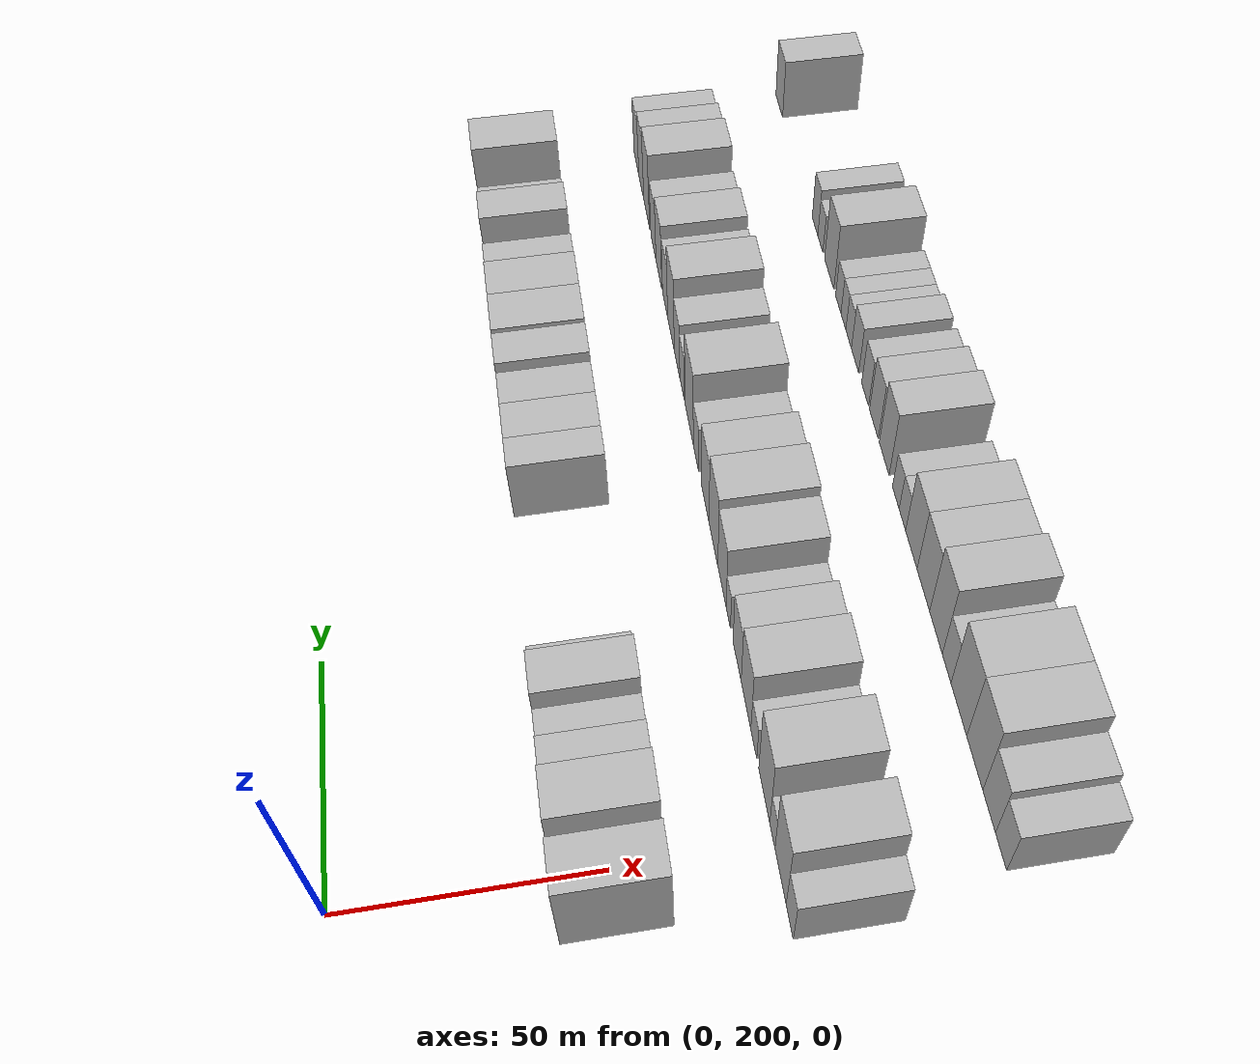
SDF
<sdf version="1.6">
 <world name="default">
  <model name="building_64">
   <static>1</static>
   <pose>50.0000 193.2630 0 0.000000 0.000000 0.000000</pose>
   <link name="link">
    <pose>0 0 12.00 0 0 0</pose>
    <collision name="collision"><geometry><box><size>20.0000 9.8753 24.0000</size></box></geometry></collision>
    <visual name="visual">
     <cast_shadows>0</cast_shadows>
     <geometry><box><size>20.0000 9.8753 24.0000</size></box></geometry>
     <material>
      <script>
       <uri>model://HANNAS_wall/materials/scripts</uri>
       <uri>model://HANNAS_wall/materials/textures</uri>
       <name>vrc/HANNAS_wall</name>
      </script>
     </material>
    </visual>
   </link>
  </model>
  <model name="building_65">
   <static>1</static>
   <pose>50.0000 206.0826 0 0.000000 0.000000 0.000000</pose>
   <link name="link">
    <pose>0 0 12.00 0 0 0</pose>
    <collision name="collision"><geometry><box><size>20.0000 9.7639 24.0000</size></box></geometry></collision>
    <visual name="visual">
     <cast_shadows>0</cast_shadows>
     <geometry><box><size>20.0000 9.7639 24.0000</size></box></geometry>
     <material>
      <script>
       <uri>model://HANNAS_wall/materials/scripts</uri>
       <uri>model://HANNAS_wall/materials/textures</uri>
       <name>vrc/HANNAS_wall</name>
      </script>
     </material>
    </visual>
   </link>
  </model>
  <model name="building_66">
   <static>1</static>
   <pose>50.0000 215.0716 0 0.000000 0.000000 0.000000</pose>
   <link name="link">
    <pose>0 0 9.00 0 0 0</pose>
    <collision name="collision"><geometry><box><size>20.0000 8.2140 18.0000</size></box></geometry></collision>
    <visual name="visual">
     <cast_shadows>0</cast_shadows>
     <geometry><box><size>20.0000 8.2140 18.0000</size></box></geometry>
     <material>
      <script>
       <uri>model://HANNAS_wall/materials/scripts</uri>
       <uri>model://HANNAS_wall/materials/textures</uri>
       <name>vrc/HANNAS_wall</name>
      </script>
     </material>
    </visual>
   </link>
  </model>
  <model name="building_67">
   <static>1</static>
   <pose>50.0000 222.5270 0 0.000000 0.000000 0.000000</pose>
   <link name="link">
    <pose>0 0 7.50 0 0 0</pose>
    <collision name="collision"><geometry><box><size>20.0000 6.6967 15.0000</size></box></geometry></collision>
    <visual name="visual">
     <cast_shadows>0</cast_shadows>
     <geometry><box><size>20.0000 6.6967 15.0000</size></box></geometry>
     <material>
      <script>
       <uri>model://HANNAS_wall/materials/scripts</uri>
       <uri>model://HANNAS_wall/materials/textures</uri>
       <name>vrc/HANNAS_wall</name>
      </script>
     </material>
    </visual>
   </link>
  </model>
  <model name="building_68">
   <static>1</static>
   <pose>50.0000 230.2782 0 0.000000 0.000000 0.000000</pose>
   <link name="link">
    <pose>0 0 10.50 0 0 0</pose>
    <collision name="collision"><geometry><box><size>20.0000 8.8058 21.0000</size></box></geometry></collision>
    <visual name="visual">
     <cast_shadows>0</cast_shadows>
     <geometry><box><size>20.0000 8.8058 21.0000</size></box></geometry>
     <material>
      <script>
       <uri>model://HANNAS_wall/materials/scripts</uri>
       <uri>model://HANNAS_wall/materials/textures</uri>
       <name>vrc/HANNAS_wall</name>
      </script>
     </material>
    </visual>
   </link>
  </model>
  <model name="building_69">
   <static>1</static>
   <pose>50.0000 237.5186 0 0.000000 0.000000 0.000000</pose>
   <link name="link">
    <pose>0 0 6.00 0 0 0</pose>
    <collision name="collision"><geometry><box><size>20.0000 5.6751 12.0000</size></box></geometry></collision>
    <visual name="visual">
     <cast_shadows>0</cast_shadows>
     <geometry><box><size>20.0000 5.6751 12.0000</size></box></geometry>
     <material>
      <script>
       <uri>model://HANNAS_wall/materials/scripts</uri>
       <uri>model://HANNAS_wall/materials/textures</uri>
       <name>vrc/HANNAS_wall</name>
      </script>
     </material>
    </visual>
   </link>
  </model>
  <model name="building_70">
   <static>1</static>
   <pose>50.0000 281.3807 0 0.000000 0.000000 0.000000</pose>
   <link name="link">
    <pose>0 0 9.00 0 0 0</pose>
    <collision name="collision"><geometry><box><size>20.0000 7.3497 18.0000</size></box></geometry></collision>
    <visual name="visual">
     <cast_shadows>0</cast_shadows>
     <geometry><box><size>20.0000 7.3497 18.0000</size></box></geometry>
     <material>
      <script>
       <uri>model://HANNAS_wall/materials/scripts</uri>
       <uri>model://HANNAS_wall/materials/textures</uri>
       <name>vrc/HANNAS_wall</name>
      </script>
     </material>
    </visual>
   </link>
  </model>
  <model name="building_71">
   <static>1</static>
   <pose>50.0000 289.5243 0 0.000000 0.000000 0.000000</pose>
   <link name="link">
    <pose>0 0 9.00 0 0 0</pose>
    <collision name="collision"><geometry><box><size>20.0000 8.9375 18.0000</size></box></geometry></collision>
    <visual name="visual">
     <cast_shadows>0</cast_shadows>
     <geometry><box><size>20.0000 8.9375 18.0000</size></box></geometry>
     <material>
      <script>
       <uri>model://HANNAS_wall/materials/scripts</uri>
       <uri>model://HANNAS_wall/materials/textures</uri>
       <name>vrc/HANNAS_wall</name>
      </script>
     </material>
    </visual>
   </link>
  </model>
  <model name="building_72">
   <static>1</static>
   <pose>50.0000 298.1298 0 0.000000 0.000000 0.000000</pose>
   <link name="link">
    <pose>0 0 9.00 0 0 0</pose>
    <collision name="collision"><geometry><box><size>20.0000 8.2735 18.0000</size></box></geometry></collision>
    <visual name="visual">
     <cast_shadows>0</cast_shadows>
     <geometry><box><size>20.0000 8.2735 18.0000</size></box></geometry>
     <material>
      <script>
       <uri>model://HANNAS_wall/materials/scripts</uri>
       <uri>model://HANNAS_wall/materials/textures</uri>
       <name>vrc/HANNAS_wall</name>
      </script>
     </material>
    </visual>
   </link>
  </model>
  <model name="building_73">
   <static>1</static>
   <pose>50.0000 306.4680 0 0.000000 0.000000 0.000000</pose>
   <link name="link">
    <pose>0 0 10.50 0 0 0</pose>
    <collision name="collision"><geometry><box><size>20.0000 8.4028 21.0000</size></box></geometry></collision>
    <visual name="visual">
     <cast_shadows>0</cast_shadows>
     <geometry><box><size>20.0000 8.4028 21.0000</size></box></geometry>
     <material>
      <script>
       <uri>model://HANNAS_wall/materials/scripts</uri>
       <uri>model://HANNAS_wall/materials/textures</uri>
       <name>vrc/HANNAS_wall</name>
      </script>
     </material>
    </visual>
   </link>
  </model>
  <model name="building_74">
   <static>1</static>
   <pose>50.0000 316.7912 0 0.000000 0.000000 0.000000</pose>
   <link name="link">
    <pose>0 0 10.50 0 0 0</pose>
    <collision name="collision"><geometry><box><size>20.0000 10.2438 21.0000</size></box></geometry></collision>
    <visual name="visual">
     <cast_shadows>0</cast_shadows>
     <geometry><box><size>20.0000 10.2438 21.0000</size></box></geometry>
     <material>
      <script>
       <uri>model://HANNAS_wall/materials/scripts</uri>
       <uri>model://HANNAS_wall/materials/textures</uri>
       <name>vrc/HANNAS_wall</name>
      </script>
     </material>
    </visual>
   </link>
  </model>
  <model name="building_75">
   <static>1</static>
   <pose>50.0000 326.7842 0 0.000000 0.000000 0.000000</pose>
   <link name="link">
    <pose>0 0 10.50 0 0 0</pose>
    <collision name="collision"><geometry><box><size>20.0000 9.7421 21.0000</size></box></geometry></collision>
    <visual name="visual">
     <cast_shadows>0</cast_shadows>
     <geometry><box><size>20.0000 9.7421 21.0000</size></box></geometry>
     <material>
      <script>
       <uri>model://HANNAS_wall/materials/scripts</uri>
       <uri>model://HANNAS_wall/materials/textures</uri>
       <name>vrc/HANNAS_wall</name>
      </script>
     </material>
    </visual>
   </link>
  </model>
  <model name="building_76">
   <static>1</static>
   <pose>50.0000 335.8999 0 0.000000 0.000000 0.000000</pose>
   <link name="link">
    <pose>0 0 9.00 0 0 0</pose>
    <collision name="collision"><geometry><box><size>20.0000 8.4894 18.0000</size></box></geometry></collision>
    <visual name="visual">
     <cast_shadows>0</cast_shadows>
     <geometry><box><size>20.0000 8.4894 18.0000</size></box></geometry>
     <material>
      <script>
       <uri>model://HANNAS_wall/materials/scripts</uri>
       <uri>model://HANNAS_wall/materials/textures</uri>
       <name>vrc/HANNAS_wall</name>
      </script>
     </material>
    </visual>
   </link>
  </model>
  <model name="building_77">
   <static>1</static>
   <pose>50.0000 342.6423 0 0.000000 0.000000 0.000000</pose>
   <link name="link">
    <pose>0 0 6.00 0 0 0</pose>
    <collision name="collision"><geometry><box><size>20.0000 4.9955 12.0000</size></box></geometry></collision>
    <visual name="visual">
     <cast_shadows>0</cast_shadows>
     <geometry><box><size>20.0000 4.9955 12.0000</size></box></geometry>
     <material>
      <script>
       <uri>model://HANNAS_wall/materials/scripts</uri>
       <uri>model://HANNAS_wall/materials/textures</uri>
       <name>vrc/HANNAS_wall</name>
      </script>
     </material>
    </visual>
   </link>
  </model>
  <model name="building_78">
   <static>1</static>
   <pose>50.0000 349.5223 0 0.000000 0.000000 0.000000</pose>
   <link name="link">
    <pose>0 0 10.50 0 0 0</pose>
    <collision name="collision"><geometry><box><size>20.0000 8.7647 21.0000</size></box></geometry></collision>
    <visual name="visual">
     <cast_shadows>0</cast_shadows>
     <geometry><box><size>20.0000 8.7647 21.0000</size></box></geometry>
     <material>
      <script>
       <uri>model://HANNAS_wall/materials/scripts</uri>
       <uri>model://HANNAS_wall/materials/textures</uri>
       <name>vrc/HANNAS_wall</name>
      </script>
     </material>
    </visual>
   </link>
  </model>
  <model name="building_79">
   <static>1</static>
   <pose>50.0000 356.8424 0 0.000000 0.000000 0.000000</pose>
   <link name="link">
    <pose>0 0 6.00 0 0 0</pose>
    <collision name="collision"><geometry><box><size>20.0000 5.8755 12.0000</size></box></geometry></collision>
    <visual name="visual">
     <cast_shadows>0</cast_shadows>
     <geometry><box><size>20.0000 5.8755 12.0000</size></box></geometry>
     <material>
      <script>
       <uri>model://HANNAS_wall/materials/scripts</uri>
       <uri>model://HANNAS_wall/materials/textures</uri>
       <name>vrc/HANNAS_wall</name>
      </script>
     </material>
    </visual>
   </link>
  </model>
  <model name="building_80">
   <static>1</static>
   <pose>50.0000 362.2302 0 0.000000 0.000000 0.000000</pose>
   <link name="link">
    <pose>0 0 6.00 0 0 0</pose>
    <collision name="collision"><geometry><box><size>20.0000 4.9001 12.0000</size></box></geometry></collision>
    <visual name="visual">
     <cast_shadows>0</cast_shadows>
     <geometry><box><size>20.0000 4.9001 12.0000</size></box></geometry>
     <material>
      <script>
       <uri>model://HANNAS_wall/materials/scripts</uri>
       <uri>model://HANNAS_wall/materials/textures</uri>
       <name>vrc/HANNAS_wall</name>
      </script>
     </material>
    </visual>
   </link>
  </model>
  <model name="building_81">
   <static>1</static>
   <pose>50.0000 370.0656 0 0.000000 0.000000 0.000000</pose>
   <link name="link">
    <pose>0 0 12.00 0 0 0</pose>
    <collision name="collision"><geometry><box><size>20.0000 10.7706 24.0000</size></box></geometry></collision>
    <visual name="visual">
     <cast_shadows>0</cast_shadows>
     <geometry><box><size>20.0000 10.7706 24.0000</size></box></geometry>
     <material>
      <script>
       <uri>model://HANNAS_wall/materials/scripts</uri>
       <uri>model://HANNAS_wall/materials/textures</uri>
       <name>vrc/HANNAS_wall</name>
      </script>
     </material>
    </visual>
   </link>
  </model>
  <model name="building_82">
   <static>1</static>
   <pose>50.0000 378.5061 0 0.000000 0.000000 0.000000</pose>
   <link name="link">
    <pose>0 0 7.50 0 0 0</pose>
    <collision name="collision"><geometry><box><size>20.0000 6.1104 15.0000</size></box></geometry></collision>
    <visual name="visual">
     <cast_shadows>0</cast_shadows>
     <geometry><box><size>20.0000 6.1104 15.0000</size></box></geometry>
     <material>
      <script>
       <uri>model://HANNAS_wall/materials/scripts</uri>
       <uri>model://HANNAS_wall/materials/textures</uri>
       <name>vrc/HANNAS_wall</name>
      </script>
     </material>
    </visual>
   </link>
  </model>
  <model name="building_141">
   <static>1</static>
   <pose>90.0000 185.7014 0 0.000000 0.000000 0.000000</pose>
   <link name="link">
    <pose>0 0 7.50 0 0 0</pose>
    <collision name="collision"><geometry><box><size>20.0000 6.1171 15.0000</size></box></geometry></collision>
    <visual name="visual">
     <cast_shadows>0</cast_shadows>
     <geometry><box><size>20.0000 6.1171 15.0000</size></box></geometry>
     <material>
      <script>
       <uri>model://HANNAS_wall/materials/scripts</uri>
       <uri>model://HANNAS_wall/materials/textures</uri>
       <name>vrc/HANNAS_wall</name>
      </script>
     </material>
    </visual>
   </link>
  </model>
  <model name="building_142">
   <static>1</static>
   <pose>90.0000 193.8503 0 0.000000 0.000000 0.000000</pose>
   <link name="link">
    <pose>0 0 12.00 0 0 0</pose>
    <collision name="collision"><geometry><box><size>20.0000 10.1807 24.0000</size></box></geometry></collision>
    <visual name="visual">
     <cast_shadows>0</cast_shadows>
     <geometry><box><size>20.0000 10.1807 24.0000</size></box></geometry>
     <material>
      <script>
       <uri>model://HANNAS_wall/materials/scripts</uri>
       <uri>model://HANNAS_wall/materials/textures</uri>
       <name>vrc/HANNAS_wall</name>
      </script>
     </material>
    </visual>
   </link>
  </model>
  <model name="building_143">
   <static>1</static>
   <pose>90.0000 201.3475 0 0.000000 0.000000 0.000000</pose>
   <link name="link">
    <pose>0 0 6.00 0 0 0</pose>
    <collision name="collision"><geometry><box><size>20.0000 4.8138 12.0000</size></box></geometry></collision>
    <visual name="visual">
     <cast_shadows>0</cast_shadows>
     <geometry><box><size>20.0000 4.8138 12.0000</size></box></geometry>
     <material>
      <script>
       <uri>model://HANNAS_wall/materials/scripts</uri>
       <uri>model://HANNAS_wall/materials/textures</uri>
       <name>vrc/HANNAS_wall</name>
      </script>
     </material>
    </visual>
   </link>
  </model>
  <model name="building_144">
   <static>1</static>
   <pose>90.0000 209.1029 0 0.000000 0.000000 0.000000</pose>
   <link name="link">
    <pose>0 0 12.00 0 0 0</pose>
    <collision name="collision"><geometry><box><size>20.0000 10.6969 24.0000</size></box></geometry></collision>
    <visual name="visual">
     <cast_shadows>0</cast_shadows>
     <geometry><box><size>20.0000 10.6969 24.0000</size></box></geometry>
     <material>
      <script>
       <uri>model://HANNAS_wall/materials/scripts</uri>
       <uri>model://HANNAS_wall/materials/textures</uri>
       <name>vrc/HANNAS_wall</name>
      </script>
     </material>
    </visual>
   </link>
  </model>
  <model name="building_145">
   <static>1</static>
   <pose>90.0000 219.4477 0 0.000000 0.000000 0.000000</pose>
   <link name="link">
    <pose>0 0 6.00 0 0 0</pose>
    <collision name="collision"><geometry><box><size>20.0000 5.9927 12.0000</size></box></geometry></collision>
    <visual name="visual">
     <cast_shadows>0</cast_shadows>
     <geometry><box><size>20.0000 5.9927 12.0000</size></box></geometry>
     <material>
      <script>
       <uri>model://HANNAS_wall/materials/scripts</uri>
       <uri>model://HANNAS_wall/materials/textures</uri>
       <name>vrc/HANNAS_wall</name>
      </script>
     </material>
    </visual>
   </link>
  </model>
  <model name="building_146">
   <static>1</static>
   <pose>90.0000 227.5006 0 0.000000 0.000000 0.000000</pose>
   <link name="link">
    <pose>0 0 10.50 0 0 0</pose>
    <collision name="collision"><geometry><box><size>20.0000 10.1129 21.0000</size></box></geometry></collision>
    <visual name="visual">
     <cast_shadows>0</cast_shadows>
     <geometry><box><size>20.0000 10.1129 21.0000</size></box></geometry>
     <material>
      <script>
       <uri>model://HANNAS_wall/materials/scripts</uri>
       <uri>model://HANNAS_wall/materials/textures</uri>
       <name>vrc/HANNAS_wall</name>
      </script>
     </material>
    </visual>
   </link>
  </model>
  <model name="building_147">
   <static>1</static>
   <pose>90.0000 236.9744 0 0.000000 0.000000 0.000000</pose>
   <link name="link">
    <pose>0 0 9.00 0 0 0</pose>
    <collision name="collision"><geometry><box><size>20.0000 8.8347 18.0000</size></box></geometry></collision>
    <visual name="visual">
     <cast_shadows>0</cast_shadows>
     <geometry><box><size>20.0000 8.8347 18.0000</size></box></geometry>
     <material>
      <script>
       <uri>model://HANNAS_wall/materials/scripts</uri>
       <uri>model://HANNAS_wall/materials/textures</uri>
       <name>vrc/HANNAS_wall</name>
      </script>
     </material>
    </visual>
   </link>
  </model>
  <model name="building_148">
   <static>1</static>
   <pose>90.0000 246.8195 0 0.000000 0.000000 0.000000</pose>
   <link name="link">
    <pose>0 0 6.00 0 0 0</pose>
    <collision name="collision"><geometry><box><size>20.0000 4.8556 12.0000</size></box></geometry></collision>
    <visual name="visual">
     <cast_shadows>0</cast_shadows>
     <geometry><box><size>20.0000 4.8556 12.0000</size></box></geometry>
     <material>
      <script>
       <uri>model://HANNAS_wall/materials/scripts</uri>
       <uri>model://HANNAS_wall/materials/textures</uri>
       <name>vrc/HANNAS_wall</name>
      </script>
     </material>
    </visual>
   </link>
  </model>
  <model name="building_149">
   <static>1</static>
   <pose>90.0000 254.0953 0 0.000000 0.000000 0.000000</pose>
   <link name="link">
    <pose>0 0 10.50 0 0 0</pose>
    <collision name="collision"><geometry><box><size>20.0000 9.6959 21.0000</size></box></geometry></collision>
    <visual name="visual">
     <cast_shadows>0</cast_shadows>
     <geometry><box><size>20.0000 9.6959 21.0000</size></box></geometry>
     <material>
      <script>
       <uri>model://HANNAS_wall/materials/scripts</uri>
       <uri>model://HANNAS_wall/materials/textures</uri>
       <name>vrc/HANNAS_wall</name>
      </script>
     </material>
    </visual>
   </link>
  </model>
  <model name="building_150">
   <static>1</static>
   <pose>90.0000 264.2451 0 0.000000 0.000000 0.000000</pose>
   <link name="link">
    <pose>0 0 12.00 0 0 0</pose>
    <collision name="collision"><geometry><box><size>20.0000 10.6038 24.0000</size></box></geometry></collision>
    <visual name="visual">
     <cast_shadows>0</cast_shadows>
     <geometry><box><size>20.0000 10.6038 24.0000</size></box></geometry>
     <material>
      <script>
       <uri>model://HANNAS_wall/materials/scripts</uri>
       <uri>model://HANNAS_wall/materials/textures</uri>
       <name>vrc/HANNAS_wall</name>
      </script>
     </material>
    </visual>
   </link>
  </model>
  <model name="building_151">
   <static>1</static>
   <pose>90.0000 274.6729 0 0.000000 0.000000 0.000000</pose>
   <link name="link">
    <pose>0 0 10.50 0 0 0</pose>
    <collision name="collision"><geometry><box><size>20.0000 10.2517 21.0000</size></box></geometry></collision>
    <visual name="visual">
     <cast_shadows>0</cast_shadows>
     <geometry><box><size>20.0000 10.2517 21.0000</size></box></geometry>
     <material>
      <script>
       <uri>model://HANNAS_wall/materials/scripts</uri>
       <uri>model://HANNAS_wall/materials/textures</uri>
       <name>vrc/HANNAS_wall</name>
      </script>
     </material>
    </visual>
   </link>
  </model>
  <model name="building_152">
   <static>1</static>
   <pose>90.0000 286.4280 0 0.000000 0.000000 0.000000</pose>
   <link name="link">
    <pose>0 0 7.50 0 0 0</pose>
    <collision name="collision"><geometry><box><size>20.0000 7.2587 15.0000</size></box></geometry></collision>
    <visual name="visual">
     <cast_shadows>0</cast_shadows>
     <geometry><box><size>20.0000 7.2587 15.0000</size></box></geometry>
     <material>
      <script>
       <uri>model://HANNAS_wall/materials/scripts</uri>
       <uri>model://HANNAS_wall/materials/textures</uri>
       <name>vrc/HANNAS_wall</name>
      </script>
     </material>
    </visual>
   </link>
  </model>
  <model name="building_153">
   <static>1</static>
   <pose>90.0000 295.7193 0 0.000000 0.000000 0.000000</pose>
   <link name="link">
    <pose>0 0 12.00 0 0 0</pose>
    <collision name="collision"><geometry><box><size>20.0000 11.3239 24.0000</size></box></geometry></collision>
    <visual name="visual">
     <cast_shadows>0</cast_shadows>
     <geometry><box><size>20.0000 11.3239 24.0000</size></box></geometry>
     <material>
      <script>
       <uri>model://HANNAS_wall/materials/scripts</uri>
       <uri>model://HANNAS_wall/materials/textures</uri>
       <name>vrc/HANNAS_wall</name>
      </script>
     </material>
    </visual>
   </link>
  </model>
  <model name="building_154">
   <static>1</static>
   <pose>90.0000 305.6078 0 0.000000 0.000000 0.000000</pose>
   <link name="link">
    <pose>0 0 7.50 0 0 0</pose>
    <collision name="collision"><geometry><box><size>20.0000 6.4530 15.0000</size></box></geometry></collision>
    <visual name="visual">
     <cast_shadows>0</cast_shadows>
     <geometry><box><size>20.0000 6.4530 15.0000</size></box></geometry>
     <material>
      <script>
       <uri>model://HANNAS_wall/materials/scripts</uri>
       <uri>model://HANNAS_wall/materials/textures</uri>
       <name>vrc/HANNAS_wall</name>
      </script>
     </material>
    </visual>
   </link>
  </model>
  <model name="building_155">
   <static>1</static>
   <pose>90.0000 312.8525 0 0.000000 0.000000 0.000000</pose>
   <link name="link">
    <pose>0 0 9.00 0 0 0</pose>
    <collision name="collision"><geometry><box><size>20.0000 8.0364 18.0000</size></box></geometry></collision>
    <visual name="visual">
     <cast_shadows>0</cast_shadows>
     <geometry><box><size>20.0000 8.0364 18.0000</size></box></geometry>
     <material>
      <script>
       <uri>model://HANNAS_wall/materials/scripts</uri>
       <uri>model://HANNAS_wall/materials/textures</uri>
       <name>vrc/HANNAS_wall</name>
      </script>
     </material>
    </visual>
   </link>
  </model>
  <model name="building_156">
   <static>1</static>
   <pose>90.0000 321.9127 0 0.000000 0.000000 0.000000</pose>
   <link name="link">
    <pose>0 0 12.00 0 0 0</pose>
    <collision name="collision"><geometry><box><size>20.0000 10.0841 24.0000</size></box></geometry></collision>
    <visual name="visual">
     <cast_shadows>0</cast_shadows>
     <geometry><box><size>20.0000 10.0841 24.0000</size></box></geometry>
     <material>
      <script>
       <uri>model://HANNAS_wall/materials/scripts</uri>
       <uri>model://HANNAS_wall/materials/textures</uri>
       <name>vrc/HANNAS_wall</name>
      </script>
     </material>
    </visual>
   </link>
  </model>
  <model name="building_157">
   <static>1</static>
   <pose>90.0000 330.9572 0 0.000000 0.000000 0.000000</pose>
   <link name="link">
    <pose>0 0 9.00 0 0 0</pose>
    <collision name="collision"><geometry><box><size>20.0000 8.0049 18.0000</size></box></geometry></collision>
    <visual name="visual">
     <cast_shadows>0</cast_shadows>
     <geometry><box><size>20.0000 8.0049 18.0000</size></box></geometry>
     <material>
      <script>
       <uri>model://HANNAS_wall/materials/scripts</uri>
       <uri>model://HANNAS_wall/materials/textures</uri>
       <name>vrc/HANNAS_wall</name>
      </script>
     </material>
    </visual>
   </link>
  </model>
  <model name="building_158">
   <static>1</static>
   <pose>90.0000 340.6823 0 0.000000 0.000000 0.000000</pose>
   <link name="link">
    <pose>0 0 10.50 0 0 0</pose>
    <collision name="collision"><geometry><box><size>20.0000 9.4453 21.0000</size></box></geometry></collision>
    <visual name="visual">
     <cast_shadows>0</cast_shadows>
     <geometry><box><size>20.0000 9.4453 21.0000</size></box></geometry>
     <material>
      <script>
       <uri>model://HANNAS_wall/materials/scripts</uri>
       <uri>model://HANNAS_wall/materials/textures</uri>
       <name>vrc/HANNAS_wall</name>
      </script>
     </material>
    </visual>
   </link>
  </model>
  <model name="building_159">
   <static>1</static>
   <pose>90.0000 349.7319 0 0.000000 0.000000 0.000000</pose>
   <link name="link">
    <pose>0 0 9.00 0 0 0</pose>
    <collision name="collision"><geometry><box><size>20.0000 8.6540 18.0000</size></box></geometry></collision>
    <visual name="visual">
     <cast_shadows>0</cast_shadows>
     <geometry><box><size>20.0000 8.6540 18.0000</size></box></geometry>
     <material>
      <script>
       <uri>model://HANNAS_wall/materials/scripts</uri>
       <uri>model://HANNAS_wall/materials/textures</uri>
       <name>vrc/HANNAS_wall</name>
      </script>
     </material>
    </visual>
   </link>
  </model>
  <model name="building_160">
   <static>1</static>
   <pose>90.0000 361.0702 0 0.000000 0.000000 0.000000</pose>
   <link name="link">
    <pose>0 0 12.00 0 0 0</pose>
    <collision name="collision"><geometry><box><size>20.0000 10.0228 24.0000</size></box></geometry></collision>
    <visual name="visual">
     <cast_shadows>0</cast_shadows>
     <geometry><box><size>20.0000 10.0228 24.0000</size></box></geometry>
     <material>
      <script>
       <uri>model://HANNAS_wall/materials/scripts</uri>
       <uri>model://HANNAS_wall/materials/textures</uri>
       <name>vrc/HANNAS_wall</name>
      </script>
     </material>
    </visual>
   </link>
  </model>
  <model name="building_161">
   <static>1</static>
   <pose>90.0000 370.5065 0 0.000000 0.000000 0.000000</pose>
   <link name="link">
    <pose>0 0 10.50 0 0 0</pose>
    <collision name="collision"><geometry><box><size>20.0000 8.8497 21.0000</size></box></geometry></collision>
    <visual name="visual">
     <cast_shadows>0</cast_shadows>
     <geometry><box><size>20.0000 8.8497 21.0000</size></box></geometry>
     <material>
      <script>
       <uri>model://HANNAS_wall/materials/scripts</uri>
       <uri>model://HANNAS_wall/materials/textures</uri>
       <name>vrc/HANNAS_wall</name>
      </script>
     </material>
    </visual>
   </link>
  </model>
  <model name="building_162">
   <static>1</static>
   <pose>90.0000 379.2963 0 0.000000 0.000000 0.000000</pose>
   <link name="link">
    <pose>0 0 9.00 0 0 0</pose>
    <collision name="collision"><geometry><box><size>20.0000 8.7299 18.0000</size></box></geometry></collision>
    <visual name="visual">
     <cast_shadows>0</cast_shadows>
     <geometry><box><size>20.0000 8.7299 18.0000</size></box></geometry>
     <material>
      <script>
       <uri>model://HANNAS_wall/materials/scripts</uri>
       <uri>model://HANNAS_wall/materials/textures</uri>
       <name>vrc/HANNAS_wall</name>
      </script>
     </material>
    </visual>
   </link>
  </model>
  <model name="building_226">
   <static>1</static>
   <pose>130.0000 191.8011 0 0.000000 0.000000 0.000000</pose>
   <link name="link">
    <pose>0 0 7.50 0 0 0</pose>
    <collision name="collision"><geometry><box><size>20.0000 7.0321 15.0000</size></box></geometry></collision>
    <visual name="visual">
     <cast_shadows>0</cast_shadows>
     <geometry><box><size>20.0000 7.0321 15.0000</size></box></geometry>
     <material>
      <script>
       <uri>model://HANNAS_wall/materials/scripts</uri>
       <uri>model://HANNAS_wall/materials/textures</uri>
       <name>vrc/HANNAS_wall</name>
      </script>
     </material>
    </visual>
   </link>
  </model>
  <model name="building_227">
   <static>1</static>
   <pose>130.0000 199.4279 0 0.000000 0.000000 0.000000</pose>
   <link name="link">
    <pose>0 0 9.00 0 0 0</pose>
    <collision name="collision"><geometry><box><size>20.0000 8.2215 18.0000</size></box></geometry></collision>
    <visual name="visual">
     <cast_shadows>0</cast_shadows>
     <geometry><box><size>20.0000 8.2215 18.0000</size></box></geometry>
     <material>
      <script>
       <uri>model://HANNAS_wall/materials/scripts</uri>
       <uri>model://HANNAS_wall/materials/textures</uri>
       <name>vrc/HANNAS_wall</name>
      </script>
     </material>
    </visual>
   </link>
  </model>
  <model name="building_228">
   <static>1</static>
   <pose>130.0000 208.9540 0 0.000000 0.000000 0.000000</pose>
   <link name="link">
    <pose>0 0 12.00 0 0 0</pose>
    <collision name="collision"><geometry><box><size>20.0000 10.8308 24.0000</size></box></geometry></collision>
    <visual name="visual">
     <cast_shadows>0</cast_shadows>
     <geometry><box><size>20.0000 10.8308 24.0000</size></box></geometry>
     <material>
      <script>
       <uri>model://HANNAS_wall/materials/scripts</uri>
       <uri>model://HANNAS_wall/materials/textures</uri>
       <name>vrc/HANNAS_wall</name>
      </script>
     </material>
    </visual>
   </link>
  </model>
  <model name="building_229">
   <static>1</static>
   <pose>130.0000 219.9960 0 0.000000 0.000000 0.000000</pose>
   <link name="link">
    <pose>0 0 12.00 0 0 0</pose>
    <collision name="collision"><geometry><box><size>20.0000 11.2533 24.0000</size></box></geometry></collision>
    <visual name="visual">
     <cast_shadows>0</cast_shadows>
     <geometry><box><size>20.0000 11.2533 24.0000</size></box></geometry>
     <material>
      <script>
       <uri>model://HANNAS_wall/materials/scripts</uri>
       <uri>model://HANNAS_wall/materials/textures</uri>
       <name>vrc/HANNAS_wall</name>
      </script>
     </material>
    </visual>
   </link>
  </model>
  <model name="building_230">
   <static>1</static>
   <pose>130.0000 228.8079 0 0.000000 0.000000 0.000000</pose>
   <link name="link">
    <pose>0 0 7.50 0 0 0</pose>
    <collision name="collision"><geometry><box><size>20.0000 6.3704 15.0000</size></box></geometry></collision>
    <visual name="visual">
     <cast_shadows>0</cast_shadows>
     <geometry><box><size>20.0000 6.3704 15.0000</size></box></geometry>
     <material>
      <script>
       <uri>model://HANNAS_wall/materials/scripts</uri>
       <uri>model://HANNAS_wall/materials/textures</uri>
       <name>vrc/HANNAS_wall</name>
      </script>
     </material>
    </visual>
   </link>
  </model>
  <model name="building_231">
   <static>1</static>
   <pose>130.0000 236.8086 0 0.000000 0.000000 0.000000</pose>
   <link name="link">
    <pose>0 0 12.00 0 0 0</pose>
    <collision name="collision"><geometry><box><size>20.0000 9.6311 24.0000</size></box></geometry></collision>
    <visual name="visual">
     <cast_shadows>0</cast_shadows>
     <geometry><box><size>20.0000 9.6311 24.0000</size></box></geometry>
     <material>
      <script>
       <uri>model://HANNAS_wall/materials/scripts</uri>
       <uri>model://HANNAS_wall/materials/textures</uri>
       <name>vrc/HANNAS_wall</name>
      </script>
     </material>
    </visual>
   </link>
  </model>
  <model name="building_232">
   <static>1</static>
   <pose>130.0000 246.6294 0 0.000000 0.000000 0.000000</pose>
   <link name="link">
    <pose>0 0 10.50 0 0 0</pose>
    <collision name="collision"><geometry><box><size>20.0000 10.0104 21.0000</size></box></geometry></collision>
    <visual name="visual">
     <cast_shadows>0</cast_shadows>
     <geometry><box><size>20.0000 10.0104 21.0000</size></box></geometry>
     <material>
      <script>
       <uri>model://HANNAS_wall/materials/scripts</uri>
       <uri>model://HANNAS_wall/materials/textures</uri>
       <name>vrc/HANNAS_wall</name>
      </script>
     </material>
    </visual>
   </link>
  </model>
  <model name="building_233">
   <static>1</static>
   <pose>130.0000 256.3532 0 0.000000 0.000000 0.000000</pose>
   <link name="link">
    <pose>0 0 10.50 0 0 0</pose>
    <collision name="collision"><geometry><box><size>20.0000 9.4373 21.0000</size></box></geometry></collision>
    <visual name="visual">
     <cast_shadows>0</cast_shadows>
     <geometry><box><size>20.0000 9.4373 21.0000</size></box></geometry>
     <material>
      <script>
       <uri>model://HANNAS_wall/materials/scripts</uri>
       <uri>model://HANNAS_wall/materials/textures</uri>
       <name>vrc/HANNAS_wall</name>
      </script>
     </material>
    </visual>
   </link>
  </model>
  <model name="building_234">
   <static>1</static>
   <pose>130.0000 263.8099 0 0.000000 0.000000 0.000000</pose>
   <link name="link">
    <pose>0 0 6.00 0 0 0</pose>
    <collision name="collision"><geometry><box><size>20.0000 5.4762 12.0000</size></box></geometry></collision>
    <visual name="visual">
     <cast_shadows>0</cast_shadows>
     <geometry><box><size>20.0000 5.4762 12.0000</size></box></geometry>
     <material>
      <script>
       <uri>model://HANNAS_wall/materials/scripts</uri>
       <uri>model://HANNAS_wall/materials/textures</uri>
       <name>vrc/HANNAS_wall</name>
      </script>
     </material>
    </visual>
   </link>
  </model>
  <model name="building_235">
   <static>1</static>
   <pose>130.0000 269.4238 0 0.000000 0.000000 0.000000</pose>
   <link name="link">
    <pose>0 0 6.00 0 0 0</pose>
    <collision name="collision"><geometry><box><size>20.0000 5.7516 12.0000</size></box></geometry></collision>
    <visual name="visual">
     <cast_shadows>0</cast_shadows>
     <geometry><box><size>20.0000 5.7516 12.0000</size></box></geometry>
     <material>
      <script>
       <uri>model://HANNAS_wall/materials/scripts</uri>
       <uri>model://HANNAS_wall/materials/textures</uri>
       <name>vrc/HANNAS_wall</name>
      </script>
     </material>
    </visual>
   </link>
  </model>
  <model name="building_236">
   <static>1</static>
   <pose>130.0000 279.7201 0 0.000000 0.000000 0.000000</pose>
   <link name="link">
    <pose>0 0 10.50 0 0 0</pose>
    <collision name="collision"><geometry><box><size>20.0000 8.8411 21.0000</size></box></geometry></collision>
    <visual name="visual">
     <cast_shadows>0</cast_shadows>
     <geometry><box><size>20.0000 8.8411 21.0000</size></box></geometry>
     <material>
      <script>
       <uri>model://HANNAS_wall/materials/scripts</uri>
       <uri>model://HANNAS_wall/materials/textures</uri>
       <name>vrc/HANNAS_wall</name>
      </script>
     </material>
    </visual>
   </link>
  </model>
  <model name="building_237">
   <static>1</static>
   <pose>130.0000 289.1876 0 0.000000 0.000000 0.000000</pose>
   <link name="link">
    <pose>0 0 9.00 0 0 0</pose>
    <collision name="collision"><geometry><box><size>20.0000 8.0941 18.0000</size></box></geometry></collision>
    <visual name="visual">
     <cast_shadows>0</cast_shadows>
     <geometry><box><size>20.0000 8.0941 18.0000</size></box></geometry>
     <material>
      <script>
       <uri>model://HANNAS_wall/materials/scripts</uri>
       <uri>model://HANNAS_wall/materials/textures</uri>
       <name>vrc/HANNAS_wall</name>
      </script>
     </material>
    </visual>
   </link>
  </model>
  <model name="building_238">
   <static>1</static>
   <pose>130.0000 297.5098 0 0.000000 0.000000 0.000000</pose>
   <link name="link">
    <pose>0 0 7.50 0 0 0</pose>
    <collision name="collision"><geometry><box><size>20.0000 6.5503 15.0000</size></box></geometry></collision>
    <visual name="visual">
     <cast_shadows>0</cast_shadows>
     <geometry><box><size>20.0000 6.5503 15.0000</size></box></geometry>
     <material>
      <script>
       <uri>model://HANNAS_wall/materials/scripts</uri>
       <uri>model://HANNAS_wall/materials/textures</uri>
       <name>vrc/HANNAS_wall</name>
      </script>
     </material>
    </visual>
   </link>
  </model>
  <model name="building_239">
   <static>1</static>
   <pose>130.0000 307.3921 0 0.000000 0.000000 0.000000</pose>
   <link name="link">
    <pose>0 0 7.50 0 0 0</pose>
    <collision name="collision"><geometry><box><size>20.0000 7.2142 15.0000</size></box></geometry></collision>
    <visual name="visual">
     <cast_shadows>0</cast_shadows>
     <geometry><box><size>20.0000 7.2142 15.0000</size></box></geometry>
     <material>
      <script>
       <uri>model://HANNAS_wall/materials/scripts</uri>
       <uri>model://HANNAS_wall/materials/textures</uri>
       <name>vrc/HANNAS_wall</name>
      </script>
     </material>
    </visual>
   </link>
  </model>
  <model name="building_240">
   <static>1</static>
   <pose>130.0000 313.8521 0 0.000000 0.000000 0.000000</pose>
   <link name="link">
    <pose>0 0 6.00 0 0 0</pose>
    <collision name="collision"><geometry><box><size>20.0000 5.7059 12.0000</size></box></geometry></collision>
    <visual name="visual">
     <cast_shadows>0</cast_shadows>
     <geometry><box><size>20.0000 5.7059 12.0000</size></box></geometry>
     <material>
      <script>
       <uri>model://HANNAS_wall/materials/scripts</uri>
       <uri>model://HANNAS_wall/materials/textures</uri>
       <name>vrc/HANNAS_wall</name>
      </script>
     </material>
    </visual>
   </link>
  </model>
  <model name="building_241">
   <static>1</static>
   <pose>130.0000 319.2367 0 0.000000 0.000000 0.000000</pose>
   <link name="link">
    <pose>0 0 6.00 0 0 0</pose>
    <collision name="collision"><geometry><box><size>20.0000 5.0632 12.0000</size></box></geometry></collision>
    <visual name="visual">
     <cast_shadows>0</cast_shadows>
     <geometry><box><size>20.0000 5.0632 12.0000</size></box></geometry>
     <material>
      <script>
       <uri>model://HANNAS_wall/materials/scripts</uri>
       <uri>model://HANNAS_wall/materials/textures</uri>
       <name>vrc/HANNAS_wall</name>
      </script>
     </material>
    </visual>
   </link>
  </model>
  <model name="building_242">
   <static>1</static>
   <pose>130.0000 324.5809 0 0.000000 0.000000 0.000000</pose>
   <link name="link">
    <pose>0 0 6.00 0 0 0</pose>
    <collision name="collision"><geometry><box><size>20.0000 5.6252 12.0000</size></box></geometry></collision>
    <visual name="visual">
     <cast_shadows>0</cast_shadows>
     <geometry><box><size>20.0000 5.6252 12.0000</size></box></geometry>
     <material>
      <script>
       <uri>model://HANNAS_wall/materials/scripts</uri>
       <uri>model://HANNAS_wall/materials/textures</uri>
       <name>vrc/HANNAS_wall</name>
      </script>
     </material>
    </visual>
   </link>
  </model>
  <model name="building_243">
   <static>1</static>
   <pose>130.0000 334.4191 0 0.000000 0.000000 0.000000</pose>
   <link name="link">
    <pose>0 0 10.50 0 0 0</pose>
    <collision name="collision"><geometry><box><size>20.0000 10.0511 21.0000</size></box></geometry></collision>
    <visual name="visual">
     <cast_shadows>0</cast_shadows>
     <geometry><box><size>20.0000 10.0511 21.0000</size></box></geometry>
     <material>
      <script>
       <uri>model://HANNAS_wall/materials/scripts</uri>
       <uri>model://HANNAS_wall/materials/textures</uri>
       <name>vrc/HANNAS_wall</name>
      </script>
     </material>
    </visual>
   </link>
  </model>
  <model name="building_244">
   <static>1</static>
   <pose>130.0000 344.3195 0 0.000000 0.000000 0.000000</pose>
   <link name="link">
    <pose>0 0 6.00 0 0 0</pose>
    <collision name="collision"><geometry><box><size>20.0000 5.7496 12.0000</size></box></geometry></collision>
    <visual name="visual">
     <cast_shadows>0</cast_shadows>
     <geometry><box><size>20.0000 5.7496 12.0000</size></box></geometry>
     <material>
      <script>
       <uri>model://HANNAS_wall/materials/scripts</uri>
       <uri>model://HANNAS_wall/materials/textures</uri>
       <name>vrc/HANNAS_wall</name>
      </script>
     </material>
    </visual>
   </link>
  </model>
  <model name="building_245">
   <static>1</static>
   <pose>130.0000 350.3728 0 0.000000 0.000000 0.000000</pose>
   <link name="link">
    <pose>0 0 7.50 0 0 0</pose>
    <collision name="collision"><geometry><box><size>20.0000 6.3570 15.0000</size></box></geometry></collision>
    <visual name="visual">
     <cast_shadows>0</cast_shadows>
     <geometry><box><size>20.0000 6.3570 15.0000</size></box></geometry>
     <material>
      <script>
       <uri>model://HANNAS_wall/materials/scripts</uri>
       <uri>model://HANNAS_wall/materials/textures</uri>
       <name>vrc/HANNAS_wall</name>
      </script>
     </material>
    </visual>
   </link>
  </model>
  <model name="building_246">
   <static>1</static>
   <pose>130.0000 394.8746 0 0.000000 0.000000 0.000000</pose>
   <link name="link">
    <pose>0 0 9.00 0 0 0</pose>
    <collision name="collision"><geometry><box><size>20.0000 8.8822 18.0000</size></box></geometry></collision>
    <visual name="visual">
     <cast_shadows>0</cast_shadows>
     <geometry><box><size>20.0000 8.8822 18.0000</size></box></geometry>
     <material>
      <script>
       <uri>model://HANNAS_wall/materials/scripts</uri>
       <uri>model://HANNAS_wall/materials/textures</uri>
       <name>vrc/HANNAS_wall</name>
      </script>
     </material>
    </visual>
   </link>
  </model>
 </world>
</sdf>
